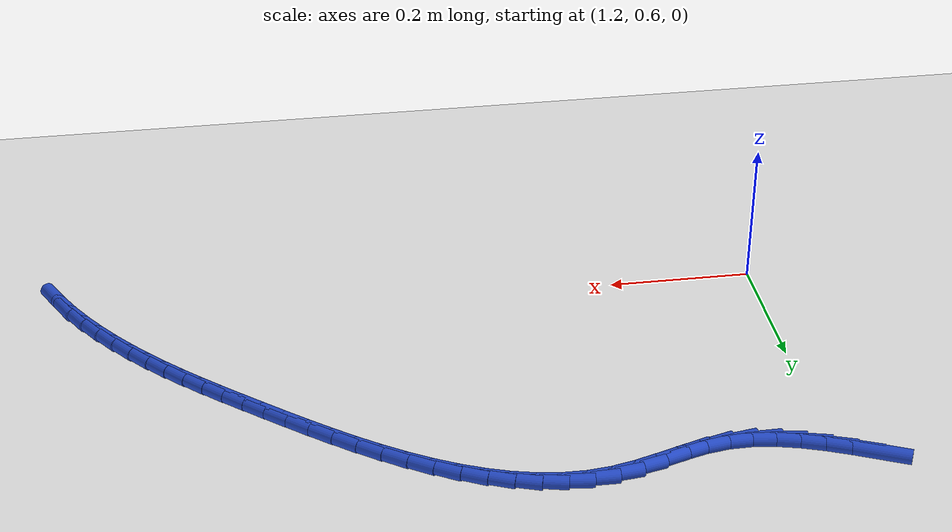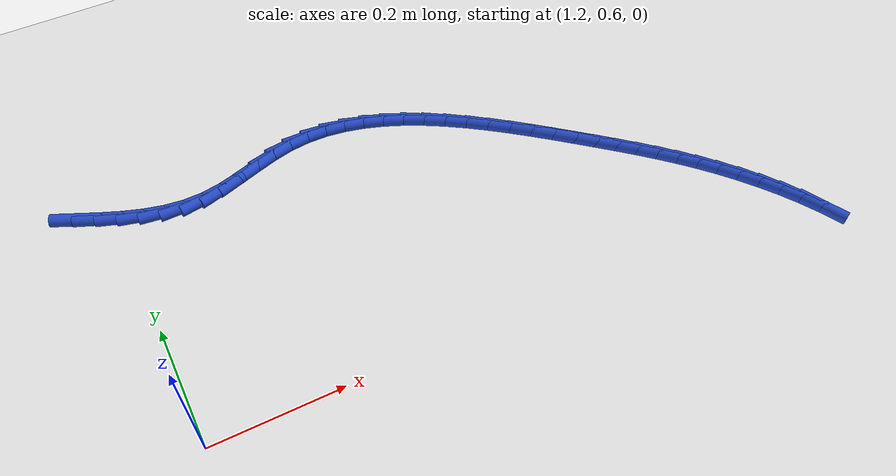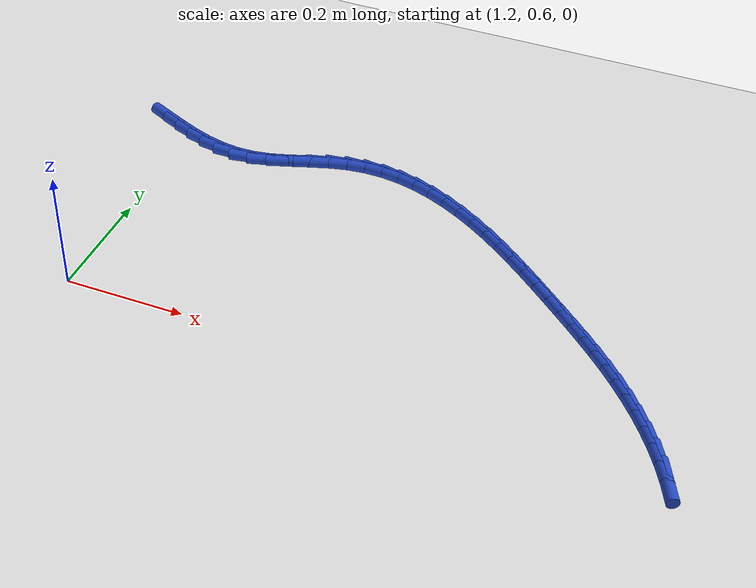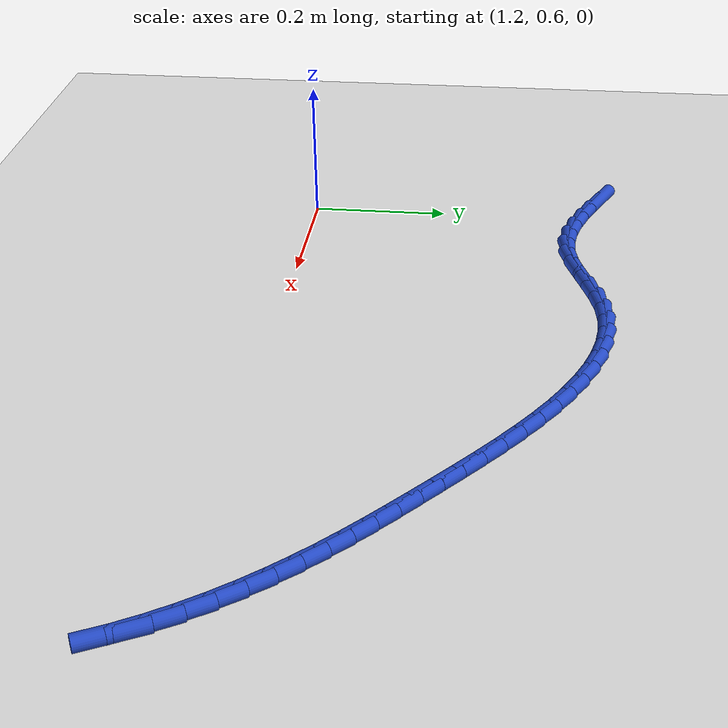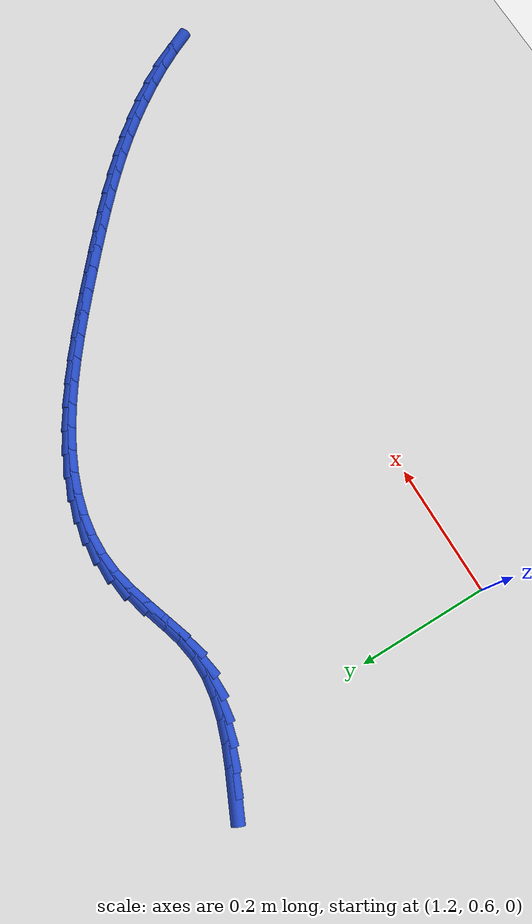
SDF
<sdf version="1.6">
 <world name="default">
  <model name="ground_plane">
   <static>1</static>
   <link name="link">
    <collision name="collision">
     <geometry><plane><normal>0 0 1</normal><size>100 100</size></plane></geometry>
     <surface><friction><ode><mu>100</mu><mu2>50</mu2></ode></friction></surface>
    </collision>
    <visual name="visual">
     <cast_shadows>0</cast_shadows>
     <geometry><plane><normal>0 0 1</normal><size>100 100</size></plane></geometry>
     <material>
      <script><uri>file://media/materials/scripts/gazebo.material</uri><name>Gazebo/WhiteGlow</name></script>
     </material>
    </visual>
   </link>
  </model>
  <model name="line">
   <link name="link_54">
    <pose>1.1457427863492065 1.042754577656174 0.01 0 1.57 -0.42742649762145185</pose>
    <collision name="collision">
     <geometry><cylinder><radius>0.01</radius><length>0.08</length></cylinder></geometry>
    </collision>
    <visual name="visual">
     <material>
      <script><name>Gazebo/Blue</name><uri>file://media/materials/scripts/gazebo.material</uri></script>
     </material>
     <geometry><cylinder><radius>0.01</radius><length>0.08</length></cylinder></geometry>
    </visual>
   </link>
   <link name="link_55">
    <pose>1.1771185235896513 1.028462618940252 0.01 0 1.57 -0.39245983784581384</pose>
    <collision name="collision">
     <geometry><cylinder><radius>0.01</radius><length>0.08</length></cylinder></geometry>
    </collision>
    <visual name="visual">
     <material>
      <script><name>Gazebo/Blue</name><uri>file://media/materials/scripts/gazebo.material</uri></script>
     </material>
     <geometry><cylinder><radius>0.01</radius><length>0.08</length></cylinder></geometry>
    </visual>
   </link>
   <link name="link_56">
    <pose>1.2080588969769754 1.0156553681262033 0.01 0 1.57 -0.33217960032265254</pose>
    <collision name="collision">
     <geometry><cylinder><radius>0.01</radius><length>0.08</length></cylinder></geometry>
    </collision>
    <visual name="visual">
     <material>
      <script><name>Gazebo/Blue</name><uri>file://media/materials/scripts/gazebo.material</uri></script>
     </material>
     <geometry><cylinder><radius>0.01</radius><length>0.08</length></cylinder></geometry>
    </visual>
   </link>
   <link name="link_57">
    <pose>1.2387322168698027 1.005074238071071 0.01 0 1.57 -0.2440534902768936</pose>
    <collision name="collision">
     <geometry><cylinder><radius>0.01</radius><length>0.08</length></cylinder></geometry>
    </collision>
    <visual name="visual">
     <material>
      <script><name>Gazebo/Blue</name><uri>file://media/materials/scripts/gazebo.material</uri></script>
     </material>
     <geometry><cylinder><radius>0.01</radius><length>0.08</length></cylinder></geometry>
    </visual>
   </link>
   <link name="link_58">
    <pose>1.269306793626757 0.9974606416318995 0.01 0 1.57 -0.12673618728374014</pose>
    <collision name="collision">
     <geometry><cylinder><radius>0.01</radius><length>0.08</length></cylinder></geometry>
    </collision>
    <visual name="visual">
     <material>
      <script><name>Gazebo/Blue</name><uri>file://media/materials/scripts/gazebo.material</uri></script>
     </material>
     <geometry><cylinder><radius>0.01</radius><length>0.08</length></cylinder></geometry>
    </visual>
   </link>
   <link name="link_59">
    <pose>1.299950937606464 0.9935559916657318 0.01 0 1.57 0.01766893961338835</pose>
    <collision name="collision">
     <geometry><cylinder><radius>0.01</radius><length>0.08</length></cylinder></geometry>
    </collision>
    <visual name="visual">
     <material>
      <script><name>Gazebo/Blue</name><uri>file://media/materials/scripts/gazebo.material</uri></script>
     </material>
     <geometry><cylinder><radius>0.01</radius><length>0.08</length></cylinder></geometry>
    </visual>
   </link>
   <link name="link_60">
    <pose>1.3308329591675458 0.9941017010296109 0.01 0 1.57 0.17495033114294778</pose>
    <collision name="collision">
     <geometry><cylinder><radius>0.01</radius><length>0.08</length></cylinder></geometry>
    </collision>
    <visual name="visual">
     <material>
      <script><name>Gazebo/Blue</name><uri>file://media/materials/scripts/gazebo.material</uri></script>
     </material>
     <geometry><cylinder><radius>0.01</radius><length>0.08</length></cylinder></geometry>
    </visual>
   </link>
   <link name="link_61">
    <pose>1.3621005171388616 0.9996284731561782 0.01 0 1.57 0.2852929375083193</pose>
    <collision name="collision">
     <geometry><cylinder><radius>0.01</radius><length>0.08</length></cylinder></geometry>
    </collision>
    <visual name="visual">
     <material>
      <script><name>Gazebo/Blue</name><uri>file://media/materials/scripts/gazebo.material</uri></script>
     </material>
     <geometry><cylinder><radius>0.01</radius><length>0.08</length></cylinder></geometry>
    </visual>
   </link>
   <link name="link_62">
    <pose>1.3937285546589575 1.0089047776822078 0.01 0 1.57 0.32993432730314515</pose>
    <collision name="collision">
     <geometry><cylinder><radius>0.01</radius><length>0.08</length></cylinder></geometry>
    </collision>
    <visual name="visual">
     <material>
      <script><name>Gazebo/Blue</name><uri>file://media/materials/scripts/gazebo.material</uri></script>
     </material>
     <geometry><cylinder><radius>0.01</radius><length>0.08</length></cylinder></geometry>
    </visual>
   </link>
   <link name="link_63">
    <pose>1.4256059786622342 1.0198212490788097 0.01 0 1.57 0.3152472145296275</pose>
    <collision name="collision">
     <geometry><cylinder><radius>0.01</radius><length>0.08</length></cylinder></geometry>
    </collision>
    <visual name="visual">
     <material>
      <script><name>Gazebo/Blue</name><uri>file://media/materials/scripts/gazebo.material</uri></script>
     </material>
     <geometry><cylinder><radius>0.01</radius><length>0.08</length></cylinder></geometry>
    </visual>
   </link>
   <link name="link_64">
    <pose>1.4576210670239298 1.0302621034696458 0.01 0 1.57 0.2402660732697191</pose>
    <collision name="collision">
     <geometry><cylinder><radius>0.01</radius><length>0.08</length></cylinder></geometry>
    </collision>
    <visual name="visual">
     <material>
      <script><name>Gazebo/Blue</name><uri>file://media/materials/scripts/gazebo.material</uri></script>
     </material>
     <geometry><cylinder><radius>0.01</radius><length>0.08</length></cylinder></geometry>
    </visual>
   </link>
   <link name="link_65">
    <pose>1.4896621130251764 1.0381121189993925 0.01 0 1.57 0.1153322933310828</pose>
    <collision name="collision">
     <geometry><cylinder><radius>0.01</radius><length>0.08</length></cylinder></geometry>
    </collision>
    <visual name="visual">
     <material>
      <script><name>Gazebo/Blue</name><uri>file://media/materials/scripts/gazebo.material</uri></script>
     </material>
     <geometry><cylinder><radius>0.01</radius><length>0.08</length></cylinder></geometry>
    </visual>
   </link>
   <link name="link_66">
    <pose>1.5216327529966942 1.0418158023687274 0.01 0 1.57 -0.012185239544491975</pose>
    <collision name="collision">
     <geometry><cylinder><radius>0.01</radius><length>0.08</length></cylinder></geometry>
    </collision>
    <visual name="visual">
     <material>
      <script><name>Gazebo/Blue</name><uri>file://media/materials/scripts/gazebo.material</uri></script>
     </material>
     <geometry><cylinder><radius>0.01</radius><length>0.08</length></cylinder></geometry>
    </visual>
   </link>
   <link name="link_67">
    <pose>1.5534807572259863 1.0414277075998775 0.01 0 1.57 -0.12986655619384777</pose>
    <collision name="collision">
     <geometry><cylinder><radius>0.01</radius><length>0.08</length></cylinder></geometry>
    </collision>
    <visual name="visual">
     <material>
      <script><name>Gazebo/Blue</name><uri>file://media/materials/scripts/gazebo.material</uri></script>
     </material>
     <geometry><cylinder><radius>0.01</radius><length>0.08</length></cylinder></geometry>
    </visual>
   </link>
   <link name="link_68">
    <pose>1.5851617830375213 1.0372901150751321 0.01 0 1.57 -0.23530702625468602</pose>
    <collision name="collision">
     <geometry><cylinder><radius>0.01</radius><length>0.08</length></cylinder></geometry>
    </collision>
    <visual name="visual">
     <material>
      <script><name>Gazebo/Blue</name><uri>file://media/materials/scripts/gazebo.material</uri></script>
     </material>
     <geometry><cylinder><radius>0.01</radius><length>0.08</length></cylinder></geometry>
    </visual>
   </link>
   <link name="link_69">
    <pose>1.6166314877557653 1.0297453051767809 0.01 0 1.57 -0.3276515764144629</pose>
    <collision name="collision">
     <geometry><cylinder><radius>0.01</radius><length>0.08</length></cylinder></geometry>
    </collision>
    <visual name="visual">
     <material>
      <script><name>Gazebo/Blue</name><uri>file://media/materials/scripts/gazebo.material</uri></script>
     </material>
     <geometry><cylinder><radius>0.01</radius><length>0.08</length></cylinder></geometry>
    </visual>
   </link>
   <link name="link_70">
    <pose>1.6478455287051874 1.0191355582871136 0.01 0 1.57 -0.40717232580845236</pose>
    <collision name="collision">
     <geometry><cylinder><radius>0.01</radius><length>0.08</length></cylinder></geometry>
    </collision>
    <visual name="visual">
     <material>
      <script><name>Gazebo/Blue</name><uri>file://media/materials/scripts/gazebo.material</uri></script>
     </material>
     <geometry><cylinder><radius>0.01</radius><length>0.08</length></cylinder></geometry>
    </visual>
   </link>
   <link name="link_71">
    <pose>1.6787595632102545 1.0058031547884199 0.01 0 1.57 -0.4747837799427998</pose>
    <collision name="collision">
     <geometry><cylinder><radius>0.01</radius><length>0.08</length></cylinder></geometry>
    </collision>
    <visual name="visual">
     <material>
      <script><name>Gazebo/Blue</name><uri>file://media/materials/scripts/gazebo.material</uri></script>
     </material>
     <geometry><cylinder><radius>0.01</radius><length>0.08</length></cylinder></geometry>
    </visual>
   </link>
   <link name="link_72">
    <pose>1.7093292485954343 0.9900903750629889 0.01 0 1.57 -0.5316588310208041</pose>
    <collision name="collision">
     <geometry><cylinder><radius>0.01</radius><length>0.08</length></cylinder></geometry>
    </collision>
    <visual name="visual">
     <material>
      <script><name>Gazebo/Blue</name><uri>file://media/materials/scripts/gazebo.material</uri></script>
     </material>
     <geometry><cylinder><radius>0.01</radius><length>0.08</length></cylinder></geometry>
    </visual>
   </link>
   <link name="link_73">
    <pose>1.7395102421851947 0.9723394994931107 0.01 0 1.57 -0.5789824809146885</pose>
    <collision name="collision">
     <geometry><cylinder><radius>0.01</radius><length>0.08</length></cylinder></geometry>
    </collision>
    <visual name="visual">
     <material>
      <script><name>Gazebo/Blue</name><uri>file://media/materials/scripts/gazebo.material</uri></script>
     </material>
     <geometry><cylinder><radius>0.01</radius><length>0.08</length></cylinder></geometry>
    </visual>
   </link>
   <link name="link_74">
    <pose>1.7692582013040037 0.9528928084610749 0.01 0 1.57 -0.6178171866591782</pose>
    <collision name="collision">
     <geometry><cylinder><radius>0.01</radius><length>0.08</length></cylinder></geometry>
    </collision>
    <visual name="visual">
     <material>
      <script><name>Gazebo/Blue</name><uri>file://media/materials/scripts/gazebo.material</uri></script>
     </material>
     <geometry><cylinder><radius>0.01</radius><length>0.08</length></cylinder></geometry>
    </visual>
   </link>
   <link name="link_75">
    <pose>1.7985287832763275 0.9320925823491713 0.01 0 1.57 -0.6490396953476041</pose>
    <collision name="collision">
     <geometry><cylinder><radius>0.01</radius><length>0.08</length></cylinder></geometry>
    </collision>
    <visual name="visual">
     <material>
      <script><name>Gazebo/Blue</name><uri>file://media/materials/scripts/gazebo.material</uri></script>
     </material>
     <geometry><cylinder><radius>0.01</radius><length>0.08</length></cylinder></geometry>
    </visual>
   </link>
   <link name="link_76">
    <pose>1.8272776454266353 0.9102811015396886 0.01 0 1.57 -0.673316021401777</pose>
    <collision name="collision">
     <geometry><cylinder><radius>0.01</radius><length>0.08</length></cylinder></geometry>
    </collision>
    <visual name="visual">
     <material>
      <script><name>Gazebo/Blue</name><uri>file://media/materials/scripts/gazebo.material</uri></script>
     </material>
     <geometry><cylinder><radius>0.01</radius><length>0.08</length></cylinder></geometry>
    </visual>
   </link>
   <link name="link_77">
    <pose>1.8554604450793946 0.8878006464149175 0.01 0 1.57 -0.6910918271109545</pose>
    <collision name="collision">
     <geometry><cylinder><radius>0.01</radius><length>0.08</length></cylinder></geometry>
    </collision>
    <visual name="visual">
     <material>
      <script><name>Gazebo/Blue</name><uri>file://media/materials/scripts/gazebo.material</uri></script>
     </material>
     <geometry><cylinder><radius>0.01</radius><length>0.08</length></cylinder></geometry>
    </visual>
   </link>
   <link name="link_78">
    <pose>1.8830328395590723 0.8649934973571467 0.01 0 1.57 -0.7025835865334096</pose>
    <collision name="collision">
     <geometry><cylinder><radius>0.01</radius><length>0.08</length></cylinder></geometry>
    </collision>
    <visual name="visual">
     <material>
      <script><name>Gazebo/Blue</name><uri>file://media/materials/scripts/gazebo.material</uri></script>
     </material>
     <geometry><cylinder><radius>0.01</radius><length>0.08</length></cylinder></geometry>
    </visual>
   </link>
   <link name="link_79">
    <pose>1.909950486190136 0.8422019347486666 0.01 0 1.57 -0.7085103948531339</pose>
    <collision name="collision">
     <geometry><cylinder><radius>0.01</radius><length>0.08</length></cylinder></geometry>
    </collision>
    <visual name="visual">
     <material>
      <script><name>Gazebo/Blue</name><uri>file://media/materials/scripts/gazebo.material</uri></script>
     </material>
     <geometry><cylinder><radius>0.01</radius><length>0.08</length></cylinder></geometry>
    </visual>
   </link>
   <link name="link_80">
    <pose>1.9361720523402126 0.8197315769355193 0.01 0 1.57 -0.7158279394785463</pose>
    <collision name="collision">
     <geometry><cylinder><radius>0.01</radius><length>0.08</length></cylinder></geometry>
    </collision>
    <visual name="visual">
     <material>
      <script><name>Gazebo/Blue</name><uri>file://media/materials/scripts/gazebo.material</uri></script>
     </material>
     <geometry><cylinder><radius>0.01</radius><length>0.08</length></cylinder></geometry>
    </visual>
   </link>
   <link name="link_81">
    <pose>1.9616845314832105 0.7975430330127901 0.01 0 1.57 -0.7285683098272168</pose>
    <collision name="collision">
     <geometry><cylinder><radius>0.01</radius><length>0.08</length></cylinder></geometry>
    </collision>
    <visual name="visual">
     <material>
      <script><name>Gazebo/Blue</name><uri>file://media/materials/scripts/gazebo.material</uri></script>
     </material>
     <geometry><cylinder><radius>0.01</radius><length>0.08</length></cylinder></geometry>
    </visual>
   </link>
   <link name="link_82">
    <pose>1.9864904558289005 0.7754076517668419 0.01 0 1.57 -0.7468682749466197</pose>
    <collision name="collision">
     <geometry><cylinder><radius>0.01</radius><length>0.08</length></cylinder></geometry>
    </collision>
    <visual name="visual">
     <material>
      <script><name>Gazebo/Blue</name><uri>file://media/materials/scripts/gazebo.material</uri></script>
     </material>
     <geometry><cylinder><radius>0.01</radius><length>0.08</length></cylinder></geometry>
    </visual>
   </link>
   <link name="link_83">
    <pose>2.0105925173759043 0.7530948357711922 0.01 0 1.57 -0.7706547188329912</pose>
    <collision name="collision">
     <geometry><cylinder><radius>0.01</radius><length>0.08</length></cylinder></geometry>
    </collision>
    <visual name="visual">
     <material>
      <script><name>Gazebo/Blue</name><uri>file://media/materials/scripts/gazebo.material</uri></script>
     </material>
     <geometry><cylinder><radius>0.01</radius><length>0.08</length></cylinder></geometry>
    </visual>
   </link>
   <link name="link_84">
    <pose>2.0339934081228437 0.7303739875993593 0.01 0 1.57 -0.7996620433764371</pose>
    <collision name="collision">
     <geometry><cylinder><radius>0.01</radius><length>0.08</length></cylinder></geometry>
    </collision>
    <visual name="visual">
     <material>
      <script><name>Gazebo/Blue</name><uri>file://media/materials/scripts/gazebo.material</uri></script>
     </material>
     <geometry><cylinder><radius>0.01</radius><length>0.08</length></cylinder></geometry>
    </visual>
   </link>
   <link name="link_85">
    <pose>2.0566958200683403 0.7070145098248608 0.01 0 1.57 -0.8334214215739584</pose>
    <collision name="collision">
     <geometry><cylinder><radius>0.01</radius><length>0.08</length></cylinder></geometry>
    </collision>
    <visual name="visual">
     <material>
      <script><name>Gazebo/Blue</name><uri>file://media/materials/scripts/gazebo.material</uri></script>
     </material>
     <geometry><cylinder><radius>0.01</radius><length>0.08</length></cylinder></geometry>
    </visual>
   </link>
   <link name="link_86">
    <pose>2.0787024452110163 0.6827858050212141 0.01 0 1.57 -0.8712464403411073</pose>
    <collision name="collision">
     <geometry><cylinder><radius>0.01</radius><length>0.08</length></cylinder></geometry>
    </collision>
    <visual name="visual">
     <material>
      <script><name>Gazebo/Blue</name><uri>file://media/materials/scripts/gazebo.material</uri></script>
     </material>
     <geometry><cylinder><radius>0.01</radius><length>0.08</length></cylinder></geometry>
    </visual>
   </link>
   <link name="link_87">
    <pose>2.1000110224236894 0.6574642478115051 0.01 0 1.57 -0.9120788713893837</pose>
    <collision name="collision">
     <geometry><cylinder><radius>0.01</radius><length>0.08</length></cylinder></geometry>
    </collision>
    <visual name="visual">
     <material>
      <script><name>Gazebo/Blue</name><uri>file://media/materials/scripts/gazebo.material</uri></script>
     </material>
     <geometry><cylinder><radius>0.01</radius><length>0.08</length></cylinder></geometry>
    </visual>
   </link>
   <link name="link_88">
    <pose>2.1204969925107946 0.6309983603129211 0.01 0 1.57 -0.9558398759747947</pose>
    <collision name="collision">
     <geometry><cylinder><radius>0.01</radius><length>0.08</length></cylinder></geometry>
    </collision>
    <visual name="visual">
     <material>
      <script><name>Gazebo/Blue</name><uri>file://media/materials/scripts/gazebo.material</uri></script>
     </material>
     <geometry><cylinder><radius>0.01</radius><length>0.08</length></cylinder></geometry>
    </visual>
   </link>
   <link name="link_89">
    <pose>2.1399086554373214 0.603515628850321 0.01 0 1.57 -1.0033128260620474</pose>
    <collision name="collision">
     <geometry><cylinder><radius>0.01</radius><length>0.08</length></cylinder></geometry>
    </collision>
    <visual name="visual">
     <material>
      <script><name>Gazebo/Blue</name><uri>file://media/materials/scripts/gazebo.material</uri></script>
     </material>
     <geometry><cylinder><radius>0.01</radius><length>0.08</length></cylinder></geometry>
    </visual>
   </link>
   <link name="link_90">
    <pose>2.1579883890303257 0.5751518757854119 0.01 0 1.57 -1.0553745093367035</pose>
    <collision name="collision">
     <geometry><cylinder><radius>0.01</radius><length>0.08</length></cylinder></geometry>
    </collision>
    <visual name="visual">
     <material>
      <script><name>Gazebo/Blue</name><uri>file://media/materials/scripts/gazebo.material</uri></script>
     </material>
     <geometry><cylinder><radius>0.01</radius><length>0.08</length></cylinder></geometry>
    </visual>
   </link>
   <link name="link_91">
    <pose>2.1744785711168677 0.5460429234799012 0.01 0 1.57 -1.1129844279342287</pose>
    <collision name="collision">
     <geometry><cylinder><radius>0.01</radius><length>0.08</length></cylinder></geometry>
    </collision>
    <visual name="visual">
     <material>
      <script><name>Gazebo/Blue</name><uri>file://media/materials/scripts/gazebo.material</uri></script>
     </material>
     <geometry><cylinder><radius>0.01</radius><length>0.08</length></cylinder></geometry>
    </visual>
   </link>
  </model>
 </world>
</sdf>
